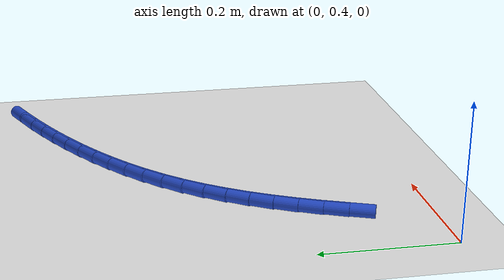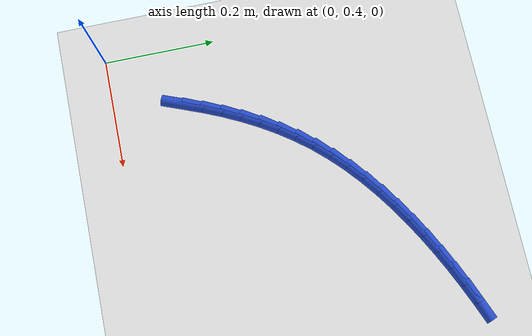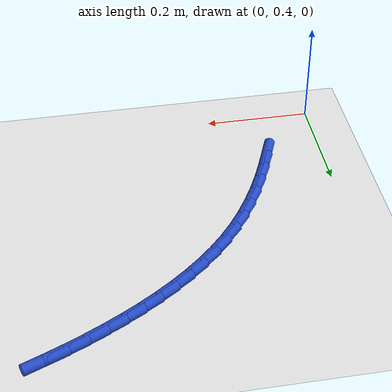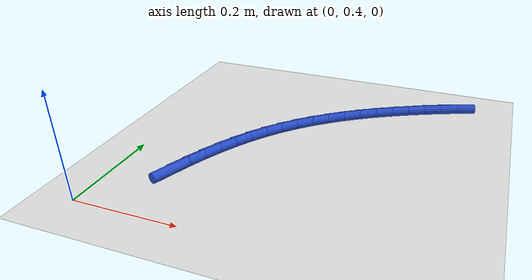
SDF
<sdf version="1.6">
 <world name="default">
  <model name="ground_plane">
   <static>1</static>
   <link name="link">
    <collision name="collision">
     <geometry><plane><normal>0 0 1</normal><size>100 100</size></plane></geometry>
     <surface><friction><ode><mu>100</mu><mu2>50</mu2></ode></friction></surface>
    </collision>
    <visual name="visual">
     <cast_shadows>0</cast_shadows>
     <geometry><plane><normal>0 0 1</normal><size>100 100</size></plane></geometry>
     <material>
      <script><uri>file://media/materials/scripts/gazebo.material</uri><name>Gazebo/WhiteGlow</name></script>
     </material>
    </visual>
   </link>
  </model>
  <model name="line">
   <link name="link_15">
    <pose>0.11014472112074677 0.526683065137821 0.01 0 1.57 1.1870214133615131</pose>
    <collision name="collision">
     <geometry><cylinder><radius>0.01</radius><length>0.08</length></cylinder></geometry>
    </collision>
    <visual name="visual">
     <material>
      <script><name>Gazebo/Blue</name><uri>file://media/materials/scripts/gazebo.material</uri></script>
     </material>
     <geometry><cylinder><radius>0.01</radius><length>0.08</length></cylinder></geometry>
    </visual>
   </link>
   <link name="link_16">
    <pose>0.12364003113836786 0.5601041341960513 0.01 0 1.57 1.1482793087308902</pose>
    <collision name="collision">
     <geometry><cylinder><radius>0.01</radius><length>0.08</length></cylinder></geometry>
    </collision>
    <visual name="visual">
     <material>
      <script><name>Gazebo/Blue</name><uri>file://media/materials/scripts/gazebo.material</uri></script>
     </material>
     <geometry><cylinder><radius>0.01</radius><length>0.08</length></cylinder></geometry>
    </visual>
   </link>
   <link name="link_17">
    <pose>0.13832869420709962 0.5927750165987903 0.01 0 1.57 1.105057148874962</pose>
    <collision name="collision">
     <geometry><cylinder><radius>0.01</radius><length>0.08</length></cylinder></geometry>
    </collision>
    <visual name="visual">
     <material>
      <script><name>Gazebo/Blue</name><uri>file://media/materials/scripts/gazebo.material</uri></script>
     </material>
     <geometry><cylinder><radius>0.01</radius><length>0.08</length></cylinder></geometry>
    </visual>
   </link>
   <link name="link_18">
    <pose>0.15431303871130114 0.6245772399225656 0.01 0 1.57 1.0572030738885174</pose>
    <collision name="collision">
     <geometry><cylinder><radius>0.01</radius><length>0.08</length></cylinder></geometry>
    </collision>
    <visual name="visual">
     <material>
      <script><name>Gazebo/Blue</name><uri>file://media/materials/scripts/gazebo.material</uri></script>
     </material>
     <geometry><cylinder><radius>0.01</radius><length>0.08</length></cylinder></geometry>
    </visual>
   </link>
   <link name="link_19">
    <pose>0.17169539303533127 0.655392331743905 0.01 0 1.57 1.0046266012586538</pose>
    <collision name="collision">
     <geometry><cylinder><radius>0.01</radius><length>0.08</length></cylinder></geometry>
    </collision>
    <visual name="visual">
     <material>
      <script><name>Gazebo/Blue</name><uri>file://media/materials/scripts/gazebo.material</uri></script>
     </material>
     <geometry><cylinder><radius>0.01</radius><length>0.08</length></cylinder></geometry>
    </visual>
   </link>
   <link name="link_20">
    <pose>0.1905780855635493 0.6851018196393366 0.01 0 1.57 0.9473315545258912</pose>
    <collision name="collision">
     <geometry><cylinder><radius>0.01</radius><length>0.08</length></cylinder></geometry>
    </collision>
    <visual name="visual">
     <material>
      <script><name>Gazebo/Blue</name><uri>file://media/materials/scripts/gazebo.material</uri></script>
     </material>
     <geometry><cylinder><radius>0.01</radius><length>0.08</length></cylinder></geometry>
    </visual>
   </link>
   <link name="link_21">
    <pose>0.21106344468031396 0.7135872311853879 0.01 0 1.57 0.8854522056791655</pose>
    <collision name="collision">
     <geometry><cylinder><radius>0.01</radius><length>0.08</length></cylinder></geometry>
    </collision>
    <visual name="visual">
     <material>
      <script><name>Gazebo/Blue</name><uri>file://media/materials/scripts/gazebo.material</uri></script>
     </material>
     <geometry><cylinder><radius>0.01</radius><length>0.08</length></cylinder></geometry>
    </visual>
   </link>
   <link name="link_22">
    <pose>0.2332537890926638 0.7407301003371942 0.01 0 1.57 0.8210329847435851</pose>
    <collision name="collision">
     <geometry><cylinder><radius>0.01</radius><length>0.08</length></cylinder></geometry>
    </collision>
    <visual name="visual">
     <material>
      <script><name>Gazebo/Blue</name><uri>file://media/materials/scripts/gazebo.material</uri></script>
     </material>
     <geometry><cylinder><radius>0.01</radius><length>0.08</length></cylinder></geometry>
    </visual>
   </link>
   <link name="link_23">
    <pose>0.25719946669421806 0.7664462165438233 0.01 0 1.57 0.7601839134821964</pose>
    <collision name="collision">
     <geometry><cylinder><radius>0.01</radius><length>0.08</length></cylinder></geometry>
    </collision>
    <visual name="visual">
     <material>
      <script><name>Gazebo/Blue</name><uri>file://media/materials/scripts/gazebo.material</uri></script>
     </material>
     <geometry><cylinder><radius>0.01</radius><length>0.08</length></cylinder></geometry>
    </visual>
   </link>
   <link name="link_24">
    <pose>0.28277735230433243 0.7907657104672643 0.01 0 1.57 0.7041427560756071</pose>
    <collision name="collision">
     <geometry><cylinder><radius>0.01</radius><length>0.08</length></cylinder></geometry>
    </collision>
    <visual name="visual">
     <material>
      <script><name>Gazebo/Blue</name><uri>file://media/materials/scripts/gazebo.material</uri></script>
     </material>
     <geometry><cylinder><radius>0.01</radius><length>0.08</length></cylinder></geometry>
    </visual>
   </link>
   <link name="link_25">
    <pose>0.3098281697414136 0.8137425409590655 0.01 0 1.57 0.6527942722596191</pose>
    <collision name="collision">
     <geometry><cylinder><radius>0.01</radius><length>0.08</length></cylinder></geometry>
    </collision>
    <visual name="visual">
     <material>
      <script><name>Gazebo/Blue</name><uri>file://media/materials/scripts/gazebo.material</uri></script>
     </material>
     <geometry><cylinder><radius>0.01</radius><length>0.08</length></cylinder></geometry>
    </visual>
   </link>
   <link name="link_26">
    <pose>0.33819264282386824 0.8354306668707755 0.01 0 1.57 0.6059396255281584</pose>
    <collision name="collision">
     <geometry><cylinder><radius>0.01</radius><length>0.08</length></cylinder></geometry>
    </collision>
    <visual name="visual">
     <material>
      <script><name>Gazebo/Blue</name><uri>file://media/materials/scripts/gazebo.material</uri></script>
     </material>
     <geometry><cylinder><radius>0.01</radius><length>0.08</length></cylinder></geometry>
    </visual>
   </link>
   <link name="link_27">
    <pose>0.36771149537010295 0.855884047053942 0.01 0 1.57 0.5633308143257734</pose>
    <collision name="collision">
     <geometry><cylinder><radius>0.01</radius><length>0.08</length></cylinder></geometry>
    </collision>
    <visual name="visual">
     <material>
      <script><name>Gazebo/Blue</name><uri>file://media/materials/scripts/gazebo.material</uri></script>
     </material>
     <geometry><cylinder><radius>0.01</radius><length>0.08</length></cylinder></geometry>
    </visual>
   </link>
   <link name="link_28">
    <pose>0.3982254511985245 0.8751566403601135 0.01 0 1.57 0.5246975988057454</pose>
    <collision name="collision">
     <geometry><cylinder><radius>0.01</radius><length>0.08</length></cylinder></geometry>
    </collision>
    <visual name="visual">
     <material>
      <script><name>Gazebo/Blue</name><uri>file://media/materials/scripts/gazebo.material</uri></script>
     </material>
     <geometry><cylinder><radius>0.01</radius><length>0.08</length></cylinder></geometry>
    </visual>
   </link>
   <link name="link_29">
    <pose>0.4295752341275396 0.8933024056408384 0.01 0 1.57 0.489767320861686</pose>
    <collision name="collision">
     <geometry><cylinder><radius>0.01</radius><length>0.08</length></cylinder></geometry>
    </collision>
    <visual name="visual">
     <material>
      <script><name>Gazebo/Blue</name><uri>file://media/materials/scripts/gazebo.material</uri></script>
     </material>
     <geometry><cylinder><radius>0.01</radius><length>0.08</length></cylinder></geometry>
    </visual>
   </link>
   <link name="link_30">
    <pose>0.461601567975555 0.9103753017476645 0.01 0 1.57 0.45827878508697806</pose>
    <collision name="collision">
     <geometry><cylinder><radius>0.01</radius><length>0.08</length></cylinder></geometry>
    </collision>
    <visual name="visual">
     <material>
      <script><name>Gazebo/Blue</name><uri>file://media/materials/scripts/gazebo.material</uri></script>
     </material>
     <geometry><cylinder><radius>0.01</radius><length>0.08</length></cylinder></geometry>
    </visual>
   </link>
   <link name="link_31">
    <pose>0.49414517656097723 0.92642928753214 0.01 0 1.57 0.4299916018830504</pose>
    <collision name="collision">
     <geometry><cylinder><radius>0.01</radius><length>0.08</length></cylinder></geometry>
    </collision>
    <visual name="visual">
     <material>
      <script><name>Gazebo/Blue</name><uri>file://media/materials/scripts/gazebo.material</uri></script>
     </material>
     <geometry><cylinder><radius>0.01</radius><length>0.08</length></cylinder></geometry>
    </visual>
   </link>
   <link name="link_32">
    <pose>0.527046783702213 0.9415183218458134 0.01 0 1.57 0.4045984454426594</pose>
    <collision name="collision">
     <geometry><cylinder><radius>0.01</radius><length>0.08</length></cylinder></geometry>
    </collision>
    <visual name="visual">
     <material>
      <script><name>Gazebo/Blue</name><uri>file://media/materials/scripts/gazebo.material</uri></script>
     </material>
     <geometry><cylinder><radius>0.01</radius><length>0.08</length></cylinder></geometry>
    </visual>
   </link>
   <link name="link_33">
    <pose>0.5601562460246211 0.9556965965973488 0.01 0 1.57 0.38100162012030997</pose>
    <collision name="collision">
     <geometry><cylinder><radius>0.01</radius><length>0.08</length></cylinder></geometry>
    </collision>
    <visual name="visual">
     <material>
      <script><name>Gazebo/Blue</name><uri>file://media/materials/scripts/gazebo.material</uri></script>
     </material>
     <geometry><cylinder><radius>0.01</radius><length>0.08</length></cylinder></geometry>
    </visual>
   </link>
  </model>
 </world>
</sdf>
